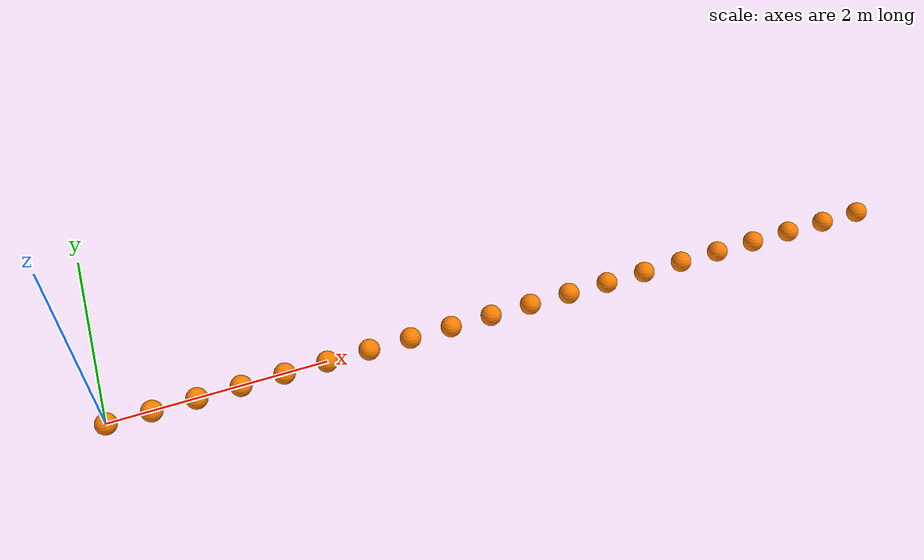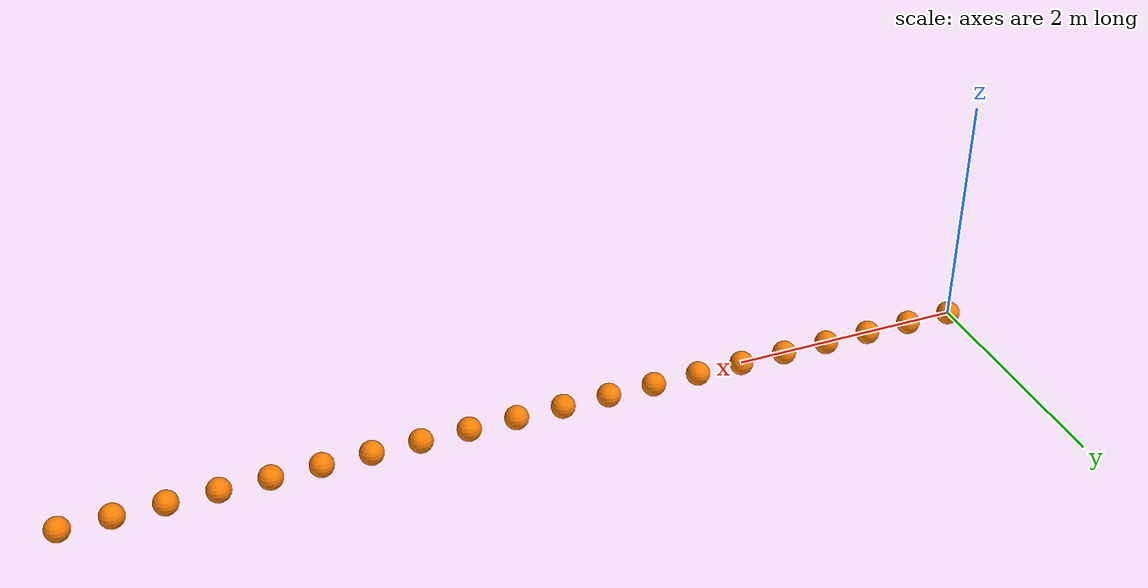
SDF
<?xml version="1.0" ?>
<sdf version="1.6">
  <model name="barrage">

    <link name="attachment_link">
      <pose>0 0 0 0 0 1.51</pose>
    </link>

    <include>
      <pose>0 0 0 0 0 0</pose>
      <uri>model://barrage_buoy</uri>
      <name>sphere1</name>
    </include>

    <include>
      <pose>0.4 0 0 0 0 0</pose>
      <uri>model://barrage_buoy</uri>
      <name>sphere2</name>
    </include>

    <include>
      <pose>0.8 0 0 0 0 0</pose>
      <uri>model://barrage_buoy</uri>
      <name>sphere3</name>
    </include>

    <include>
      <pose>1.2 0 0 0 0 0</pose>
      <uri>model://barrage_buoy</uri>
      <name>sphere4</name>
    </include>

    <include>
      <pose>1.6 0 0 0 0 0</pose>
      <uri>model://barrage_buoy</uri>
      <name>sphere5</name>
    </include>

    <include>
      <pose>2.0 0 0 0 0 0</pose>
      <uri>model://barrage_buoy</uri>
      <name>sphere6</name>
    </include>

    <include>
      <pose>2.4 0 0 0 0 0</pose>
      <uri>model://barrage_buoy</uri>
      <name>sphere7</name>
    </include>

    <include>
      <pose>2.8 0 0 0 0 0</pose>
      <uri>model://barrage_buoy</uri>
      <name>sphere8</name>
    </include>

    <include>
      <pose>3.2 0 0 0 0 0</pose>
      <uri>model://barrage_buoy</uri>
      <name>sphere9</name>
    </include>

    <include>
      <pose>3.6 0 0 0 0 0</pose>
      <uri>model://barrage_buoy</uri>
      <name>sphere10</name>
    </include>

    <include>
      <pose>4.0 0 0 0 0 0</pose>
      <uri>model://barrage_buoy</uri>
      <name>sphere11</name>
    </include>

    <include>
      <pose>4.4 0 0 0 0 0</pose>
      <uri>model://barrage_buoy</uri>
      <name>sphere12</name>
    </include>

    <include>
      <pose>4.8 0 0 0 0 0</pose>
      <uri>model://barrage_buoy</uri>
      <name>sphere13</name>
    </include>

    <include>
      <pose>5.2 0 0 0 0 0</pose>
      <uri>model://barrage_buoy</uri>
      <name>sphere14</name>
    </include>

    <include>
      <pose>5.6 0 0 0 0 0</pose>
      <uri>model://barrage_buoy</uri>
      <name>sphere15</name>
    </include>

    <include>
      <pose>6.0 0 0 0 0 0</pose>
      <uri>model://barrage_buoy</uri>
      <name>sphere16</name>
    </include>

    <include>
      <pose>6.4 0 0 0 0 0</pose>
      <uri>model://barrage_buoy</uri>
      <name>sphere17</name>
    </include>

    <include>
      <pose>6.8 0 0 0 0 0</pose>
      <uri>model://barrage_buoy</uri>
      <name>sphere18</name>
    </include>

    <include>
      <pose>7.2 0 0 0 0 0</pose>
      <uri>model://barrage_buoy</uri>
      <name>sphere19</name>
    </include>

    <include>
      <pose>7.6 0 0 0 0 0</pose>
      <uri>model://barrage_buoy</uri>
      <name>sphere20</name>
    </include>

    <joint name="joint1" type="universal">
      <parent>sphere1</parent>
      <child>sphere2</child>
      <axis>
        <xyz>0 1 0</xyz>
        <limit>
          <lower>-0.05</lower>
          <upper>0.05</upper>
        </limit>
      </axis>
      <axis2>
        <xyz>1 0 0</xyz>
        <limit>
          <lower>-0.05</lower>
          <upper>0.05</upper>
        </limit>
      </axis2>
      <pose>0.2 0 0 0 0 0</pose>
    </joint>

    <joint name="joint2" type="universal">
      <parent>sphere2</parent>
      <child>sphere3</child>
      <axis>
        <xyz>0 1 0</xyz>
        <limit>
          <lower>-0.05</lower>
          <upper>0.05</upper>
        </limit>
      </axis>
      <axis2>
        <xyz>1 0 0</xyz>
        <limit>
          <lower>-0.05</lower>
          <upper>0.05</upper>
        </limit>
      </axis2>
      <pose>0.6 0 0 0 0 0</pose>
    </joint>

    <joint name="joint3" type="universal">
      <parent>sphere3</parent>
      <child>sphere4</child>
      <axis>
        <xyz>0 1 0</xyz>
        <limit>
          <lower>-0.05</lower>
          <upper>0.05</upper>
        </limit>
      </axis>
      <axis2>
        <xyz>1 0 0</xyz>
        <limit>
          <lower>-0.05</lower>
          <upper>0.05</upper>
        </limit>
      </axis2>
      <pose>1.0 0 0 0 0 0</pose>
    </joint>

    <joint name="joint4" type="universal">
      <parent>sphere4</parent>
      <child>sphere5</child>
      <axis>
        <xyz>0 1 0</xyz>
        <limit>
          <lower>-0.05</lower>
          <upper>0.05</upper>
        </limit>
      </axis>
      <axis2>
        <xyz>1 0 0</xyz>
        <limit>
          <lower>-0.05</lower>
          <upper>0.05</upper>
        </limit>
      </axis2>
      <pose>1.4 0 0 0 0 0</pose>
    </joint>

    <joint name="joint5" type="universal">
      <parent>sphere5</parent>
      <child>sphere6</child>
      <axis>
        <xyz>0 1 0</xyz>
        <limit>
          <lower>-0.05</lower>
          <upper>0.05</upper>
        </limit>
      </axis>
      <axis2>
        <xyz>1 0 0</xyz>
        <limit>
          <lower>-0.05</lower>
          <upper>0.05</upper>
        </limit>
      </axis2>
      <pose>1.8 0 0 0 0 0</pose>
    </joint>

    <joint name="joint6" type="universal">
      <parent>sphere6</parent>
      <child>sphere7</child>
      <axis>
        <xyz>0 1 0</xyz>
        <limit>
          <lower>-0.05</lower>
          <upper>0.05</upper>
        </limit>
      </axis>
      <axis2>
        <xyz>1 0 0</xyz>
        <limit>
          <lower>-0.05</lower>
          <upper>0.05</upper>
        </limit>
      </axis2>
      <pose>2.2 0 0 0 0 0</pose>
    </joint>

    <joint name="joint7" type="universal">
      <parent>sphere7</parent>
      <child>sphere8</child>
      <axis>
        <xyz>0 1 0</xyz>
        <limit>
          <lower>-0.05</lower>
          <upper>0.05</upper>
        </limit>
      </axis>
      <axis2>
        <xyz>1 0 0</xyz>
        <limit>
          <lower>-0.05</lower>
          <upper>0.05</upper>
        </limit>
      </axis2>
      <pose>2.6 0 0 0 0 0</pose>
    </joint>

    <joint name="joint8" type="universal">
      <parent>sphere8</parent>
      <child>sphere9</child>
      <axis>
        <xyz>0 1 0</xyz>
        <limit>
          <lower>-0.05</lower>
          <upper>0.05</upper>
        </limit>
      </axis>
      <axis2>
        <xyz>1 0 0</xyz>
        <limit>
          <lower>-0.05</lower>
          <upper>0.05</upper>
        </limit>
      </axis2>
      <pose>3.0 0 0 0 0 0</pose>
    </joint>

    <joint name="joint9" type="universal">
      <parent>sphere9</parent>
      <child>sphere10</child>
      <axis>
        <xyz>0 1 0</xyz>
        <limit>
          <lower>-0.05</lower>
          <upper>0.05</upper>
        </limit>
      </axis>
      <axis2>
        <xyz>1 0 0</xyz>
        <limit>
          <lower>-0.05</lower>
          <upper>0.05</upper>
        </limit>
      </axis2>
      <pose>3.4 0 0 0 0 0</pose>
    </joint>

    <joint name="joint10" type="universal">
      <parent>sphere10</parent>
      <child>sphere11</child>
      <axis>
        <xyz>0 1 0</xyz>
        <limit>
          <lower>-0.05</lower>
          <upper>0.05</upper>
        </limit>
      </axis>
      <axis2>
        <xyz>1 0 0</xyz>
        <limit>
          <lower>-0.05</lower>
          <upper>0.05</upper>
        </limit>
      </axis2>
      <pose>3.8 0 0 0 0 0</pose>
    </joint>

    <joint name="joint11" type="universal">
      <parent>sphere11</parent>
      <child>sphere12</child>
      <axis>
        <xyz>0 1 0</xyz>
        <limit>
          <lower>-0.05</lower>
          <upper>0.05</upper>
        </limit>
      </axis>
      <axis2>
        <xyz>1 0 0</xyz>
        <limit>
          <lower>-0.05</lower>
          <upper>0.05</upper>
        </limit>
      </axis2>
      <pose>4.2 0 0 0 0 0</pose>
    </joint>

    <joint name="joint12" type="universal">
      <parent>sphere12</parent>
      <child>sphere13</child>
      <axis>
        <xyz>0 1 0</xyz>
        <limit>
          <lower>-0.05</lower>
          <upper>0.05</upper>
        </limit>
      </axis>
      <axis2>
        <xyz>1 0 0</xyz>
        <limit>
          <lower>-0.05</lower>
          <upper>0.05</upper>
        </limit>
      </axis2>
      <pose>4.6 0 0 0 0 0</pose>
    </joint>

    <joint name="joint13" type="universal">
      <parent>sphere13</parent>
      <child>sphere14</child>
      <axis>
        <xyz>0 1 0</xyz>
        <limit>
          <lower>-0.05</lower>
          <upper>0.05</upper>
        </limit>
      </axis>
      <axis2>
        <xyz>1 0 0</xyz>
        <limit>
          <lower>-0.05</lower>
          <upper>0.05</upper>
        </limit>
      </axis2>
      <pose>5.0 0 0 0 0 0</pose>
    </joint>

    <joint name="joint14" type="universal">
      <parent>sphere14</parent>
      <child>sphere15</child>
      <axis>
        <xyz>0 1 0</xyz>
        <limit>
          <lower>-0.05</lower>
          <upper>0.05</upper>
        </limit>
      </axis>
      <axis2>
        <xyz>1 0 0</xyz>
        <limit>
          <lower>-0.05</lower>
          <upper>0.05</upper>
        </limit>
      </axis2>
      <pose>5.4 0 0 0 0 0</pose>
    </joint>

    <joint name="joint15" type="universal">
      <parent>sphere15</parent>
      <child>sphere16</child>
      <axis>
        <xyz>0 1 0</xyz>
        <limit>
          <lower>-0.05</lower>
          <upper>0.05</upper>
        </limit>
      </axis>
      <axis2>
        <xyz>1 0 0</xyz>
        <limit>
          <lower>-0.05</lower>
          <upper>0.05</upper>
        </limit>
      </axis2>
      <pose>5.8 0 0 0 0 0</pose>
    </joint>

    <joint name="joint16" type="universal">
      <parent>sphere16</parent>
      <child>sphere17</child>
      <axis>
        <xyz>0 1 0</xyz>
        <limit>
          <lower>-0.05</lower>
          <upper>0.05</upper>
        </limit>
      </axis>
      <axis2>
        <xyz>1 0 0</xyz>
        <limit>
          <lower>-0.05</lower>
          <upper>0.05</upper>
        </limit>
      </axis2>
      <pose>6.2 0 0 0 0 0</pose>
    </joint>

    <joint name="joint17" type="universal">
      <parent>sphere17</parent>
      <child>sphere18</child>
      <axis>
        <xyz>0 1 0</xyz>
        <limit>
          <lower>-0.05</lower>
          <upper>0.05</upper>
        </limit>
      </axis>
      <axis2>
        <xyz>1 0 0</xyz>
        <limit>
          <lower>-0.05</lower>
          <upper>0.05</upper>
        </limit>
      </axis2>
      <pose>6.6 0 0 0 0 0</pose>
    </joint>

    <joint name="joint18" type="universal">
      <parent>sphere18</parent>
      <child>sphere19</child>
      <axis>
        <xyz>0 1 0</xyz>
        <limit>
          <lower>-0.05</lower>
          <upper>0.05</upper>
        </limit>
      </axis>
      <axis2>
        <xyz>1 0 0</xyz>
        <limit>
          <lower>-0.05</lower>
          <upper>0.05</upper>
        </limit>
      </axis2>
      <pose>7.0 0 0 0 0 0</pose>
    </joint>

    <joint name="joint19" type="universal">
      <parent>sphere19</parent>
      <child>sphere20</child>
      <axis>
        <xyz>0 1 0</xyz>
        <limit>
          <lower>-0.05</lower>
          <upper>0.05</upper>
        </limit>
      </axis>
      <axis2>
        <xyz>1 0 0</xyz>
        <limit>
          <lower>-0.05</lower>
          <upper>0.05</upper>
        </limit>
      </axis2>
      <pose>7.4 0 0 0 0 0</pose>
    </joint>

  </model>
</sdf>

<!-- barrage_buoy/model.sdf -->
<sdf version="1.6">
  <model name="barrage_buoy">
    <plugin
        filename="gz-waves1-hydrodynamics-system"
        name="gz::sim::systems::Hydrodynamics">
    </plugin>
    <link name="base_link">
      <visual name="visual">
        <geometry>
          <sphere>
            <radius>0.1</radius>
          </sphere>
        </geometry>
        <material>
          <ambient>1.0 0.5 0.0 1.0</ambient>
          <diffuse>1.0 0.5 0.0 1.0</diffuse>
          <specular>0.8 0.8 0.8 1.0</specular>
        </material>
      </visual>
      <collision name="collision">
        <geometry>
          <sphere>
            <radius>0.1</radius>
          </sphere>
        </geometry>
      </collision>
      <inertial>
        <mass>0.12</mass>
        <inertia>
          <!-- Recalculated based on the solid sphere inertia formula -->
          <ixx>0.000016</ixx> <!-- 2/5 * mass * radius^2 -->
          <ixy>0.0</ixy>
          <ixz>0.0</ixz>
          <iyy>0.000016</iyy>
          <iyz>0.0</iyz>
          <izz>0.000016</izz>
        </inertia>
      </inertial>
    </link>
  </model>
</sdf>
